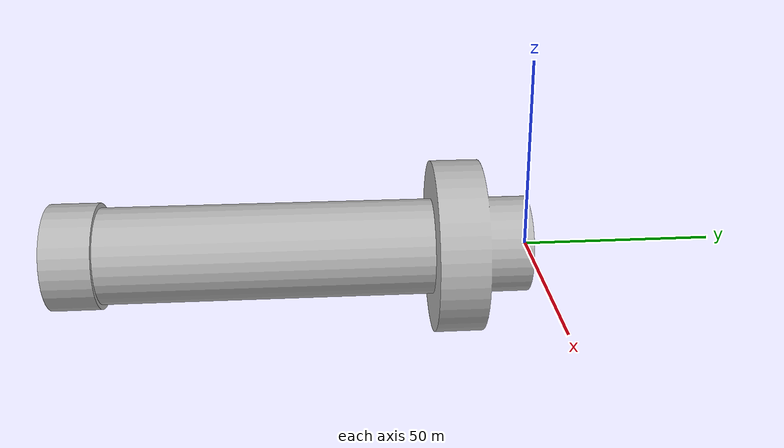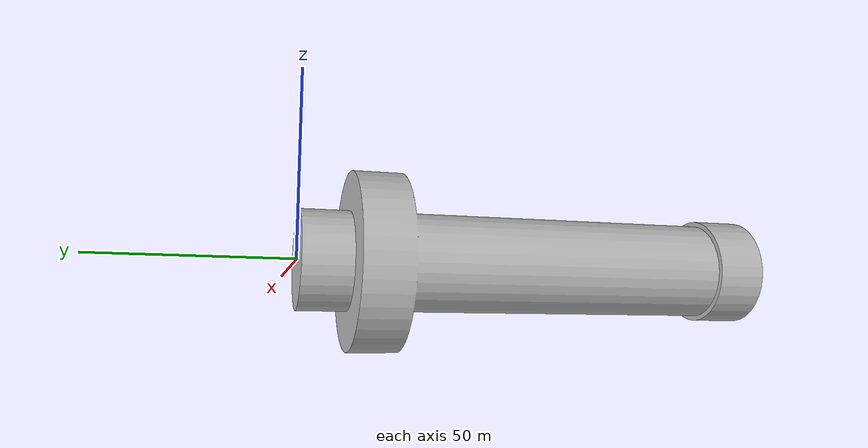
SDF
<?xml version='1.0'?>
<sdf version='1.6'>
  <model name='Green Surmark Buoy'>
    <static>false</static>
    <plugin
        filename="gz-waves1-hydrodynamics-system"
        name="gz::sim::systems::Hydrodynamics">
    </plugin>
    <link name="base_link">
      <visual name="visual">
        <pose>0 0 0 1.5708 0 0</pose>
        <geometry>
          <mesh>
            <uri>model://tall_green/meshes/GreenSurMark.dae</uri>
          </mesh>
        </geometry>
      </visual>
      <collision name="collision">
        <pose>0 0 0 0 0 0</pose>
        <geometry>
          <mesh>
            <uri>model://tall_green/meshes/GreenSurMark.dae</uri>
          </mesh>
        </geometry>
      </collision>
      <inertial>
        <pose>0 0 0 0 0 0</pose>
        <mass>400</mass>
        <inertia>
          <ixx>266</ixx>
          <ixy>0</ixy>
          <iyy>266</iyy>
          <iyz>0</iyz>
          <izz>266</izz>
        </inertia>
      </inertial>
    </link>
  </model>
</sdf>
